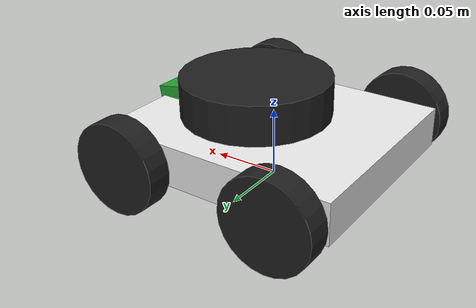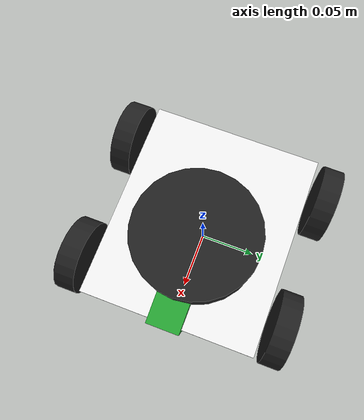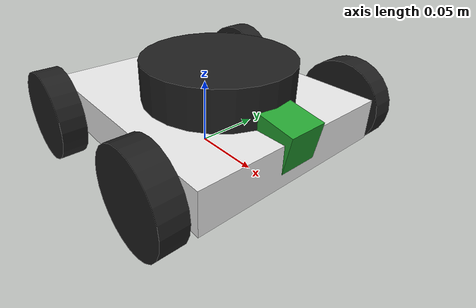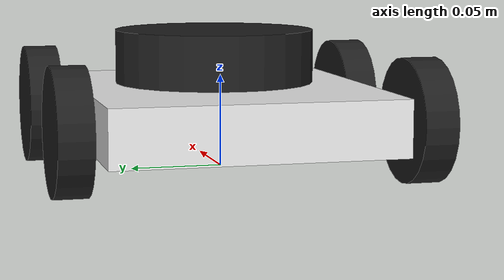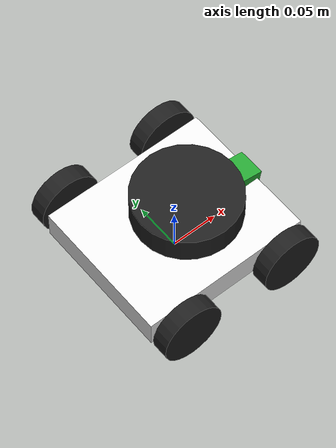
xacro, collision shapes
<?xml version="1.0"?>
<robot name="ika" xmlns:xacro="http://www.ros.org/wiki/xacro">

  <xacro:property name="PI" value="3.1415926535897931"/>

  <xacro:property name="cameraSize" value="0.029"/>
  <xacro:property name="cameraMass" value="0.05"/>
  <xacro:property name="chassisHeight" value="0.03"/>
  <xacro:property name="chassisLength" value="0.18"/>
  <xacro:property name="chassisWidth" value="0.154"/>
  <xacro:property name="chassisMass" value="0.5"/>

  <xacro:property name="wheelWidth" value="0.02"/>
  <xacro:property name="wheelRadius" value="0.03"/>
  <!--xacro:property name="wheelPos" value="0.2"/-->
  <!--xacro:property name="wheelMass" value="2.8498940e-02"/-->
  <xacro:include filename="$(find ika_description)/urdf/ika.gazebo" />
  <xacro:include filename="$(find ika_description)/urdf/materials.xacro" />
  <xacro:include filename="$(find ika_description)/urdf/macros.xacro" />

  <link name="footprint" />

  <joint name="base_joint" type="fixed">
    <parent link="footprint"/>
    <child link="chassis"/>
    <origin xyz="0.0 0.0 0.0" rpy="0 0 0"/>
  </joint>

  <joint name="imu_joint" type="fixed">
    <parent link="chassis"/>
    <child link="imu_link"/>
    <origin xyz="0.0 0 0.068" rpy="0 0 0"/>
  </joint>

  <link name="imu_link"/>

  <link name='chassis'>
    <collision>
      <origin xyz="0 0 ${wheelRadius}" rpy="0 0 0"/>
      <geometry>
        <box size="${chassisLength} ${chassisWidth} ${chassisHeight}"/>
      </geometry>
    </collision>
    <visual>
      <origin xyz="0 0 ${wheelRadius}" rpy="0 0 0"/>
      <geometry>
        <box size="${chassisLength} ${chassisWidth} ${chassisHeight}"/>
      </geometry>
      <material name="white"/>
    </visual>
    <inertial>
      <origin xyz="0 0 ${wheelRadius}" rpy="0 0 0"/>
      <mass value="${chassisMass}"/>
      <box_inertia m="${chassisMass}" x="${chassisLength}" y="${chassisWidth}" z="${chassisHeight}"/>
    </inertial>
  </link>
  <link name="camera">
    <collision>
      <origin xyz="0 0 0" rpy="0 0 0"/>
      <geometry>
        <box size="${cameraSize} ${cameraSize} ${cameraSize}"/>
      </geometry>
    </collision>

    <visual>
      <origin xyz="0 0 0" rpy="0 0 0"/>
      <geometry>
        <box size="${cameraSize} ${cameraSize} ${cameraSize}"/>
      </geometry>
      <material name="green"/>
    </visual>

    <inertial>
      <mass value="${cameraMass}" />
      <origin xyz="0 0 0" rpy="0 0 0"/>
      <box_inertia m="${cameraMass}" x="${cameraSize}" y="${cameraSize}" z="${cameraSize}" />
      <inertia ixx="1e-6" ixy="0" ixz="0" iyy="1e-6" iyz="0" izz="1e-6" />
    </inertial>
  </link>

  <joint name="camera_joint" type="fixed">
    <axis xyz="0 1 0" />
    <origin xyz=".078 0 0.04" rpy="0 0.174532925 0"/>
    <parent link="chassis"/>
    <child link="camera"/>
  </joint>

  <joint name="scan_joint" type="fixed">
    <parent link="chassis"/>
    <child link="base_scan"/>
    <origin xyz="0.0 0 0.065" rpy="0 0 0"/>
  </joint>

  <link name="base_scan">
    <visual>
      <origin xyz="0 0 0.0" rpy="0 0 0"/>
      <geometry>
        <mesh filename="package://turtlebot3_description/meshes/sensors/lds.stl" scale="0.001 0.001 0.001"/>
      </geometry>
      <material name="dark"/>
    </visual>

    <collision>
      <origin xyz="0.015 0 -0.0065" rpy="0 0 0"/>
      <geometry>
        <cylinder length="0.0315" radius="0.055"/>
      </geometry>
    </collision>

    <inertial>
      <mass value="0.114" />
      <origin xyz="0 0 0" />
      <inertia ixx="0.001" ixy="0.0" ixz="0.0"
               iyy="0.001" iyz="0.0"
               izz="0.001" />
    </inertial>
  </link>

  <wheel lr="front_left" tY="1" ps="0.0595"/>
  <wheel lr="front_right" tY="-1" ps="0.0595"/>

  <wheel lr="rear_left" tY="1" ps="-0.0595"/>
  <wheel lr="rear_right" tY="-1" ps="-0.0595"/>

</robot>

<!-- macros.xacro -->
<robot name="ika" xmlns:xacro="http://www.ros.org/wiki/xacro">
  <macro name="cylinder_inertia" params="m r h">
    <inertia  ixx="${m*(3*r*r+h*h)/12}" ixy = "0" ixz = "0"
      iyy="${m*(3*r*r+h*h)/12}" iyz = "0"
      izz="${m*r*r/2}"
    />
  </macro>

  <macro name="box_inertia" params="m x y z">
    <inertia  ixx="${m*(y*y+z*z)/12}" ixy = "0" ixz = "0"
      iyy="${m*(x*x+z*z)/12}" iyz = "0"
      izz="${m*(x*x+z*z)/12}"
    />
  </macro>

  <macro name="sphere_inertia" params="m r">
    <inertia  ixx="${2*m*r*r/5}" ixy = "0" ixz = "0"
      iyy="${2*m*r*r/5}" iyz = "0"
      izz="${2*m*r*r/5}"
    />
  </macro>
  <macro name="wheel" params="lr tY ps">

  <link name="${lr}_wheel">
    <collision>
      <origin xyz="0 0 0" rpy="${-1*PI/2} 0 0"/>
      <geometry>
        <cylinder length="0.018" radius="0.033"/>
      </geometry>
    </collision>

    <visual>
      <origin xyz="0 0 0" rpy="0 0 0"/>
      <geometry>
        <mesh filename="package://turtlebot3_description/meshes/wheels/right_tire.stl" scale="0.001 0.001 0.001"/>
      </geometry>
      <material name="dark"/>
    </visual>

    <inertial>
      <origin xyz="0 0 0" rpy="${-1*PI/2} 0 0"/>
      <mass value="2.8498940e-02" />
      <inertia ixx="1.1175580e-05" ixy="-4.2369783e-11" ixz="-5.9381719e-09"
               iyy="1.1192413e-05" iyz="-1.4400107e-11"
               izz="2.0712558e-05" />
      </inertial>
  </link>

  <gazebo reference="${lr}_wheel">
    <mu1>0.1</mu1>
    <mu2>0.1</mu2>
    <kp>500000.0</kp>
    <kd>10.0</kd>
    <minDepth>0.001</minDepth>
    <maxVel>0.1</maxVel>
    <fdir1>1 0 0</fdir1>
    <material>Gazebo/FlatBlack</material>
  </gazebo>

  <joint name="${lr}_wheel_hinge" type="continuous">
    <parent link="chassis"/>
    <child link="${lr}_wheel"/>
  <origin xyz="${ps} ${tY*0.005 + tY*wheelWidth/2+tY*chassisWidth/2} ${wheelRadius}" rpy="0 0 0" />
    <axis xyz="0 1 0" rpy="0 0 0" />
    <limit effort="100" velocity="100"/>
    <joint_properties damping="0.0" friction="0.0"/>
  </joint>

  <transmission name="${lr}_trans">
    <type>transmission_interface/SimpleTransmission</type>
    <joint name="${lr}_wheel_hinge">
      <hardwareInterface>EffortJointInterface</hardwareInterface>
     </joint>
    <actuator name="${lr}Motor">
      <hardwareInterface>EffortJointInterface</hardwareInterface>
      <mechanicalReduction>10</mechanicalReduction>
    </actuator>
  </transmission>

  </macro>
</robot>
